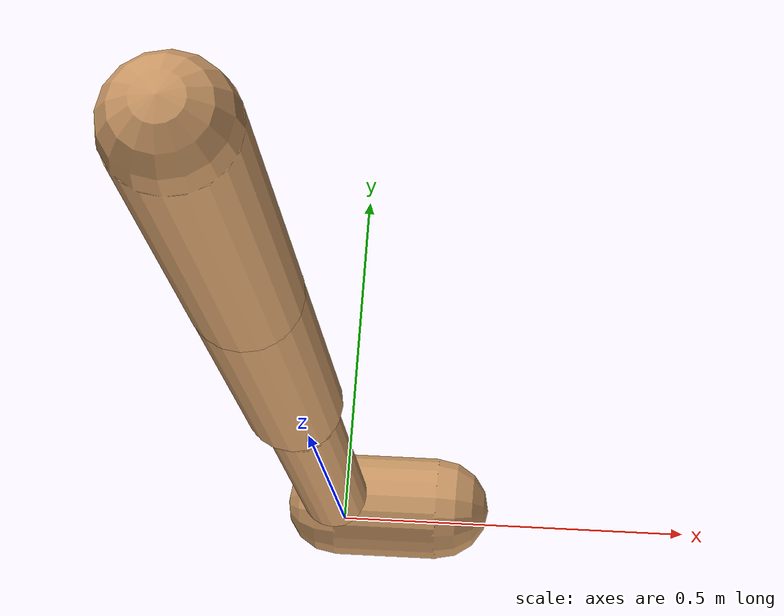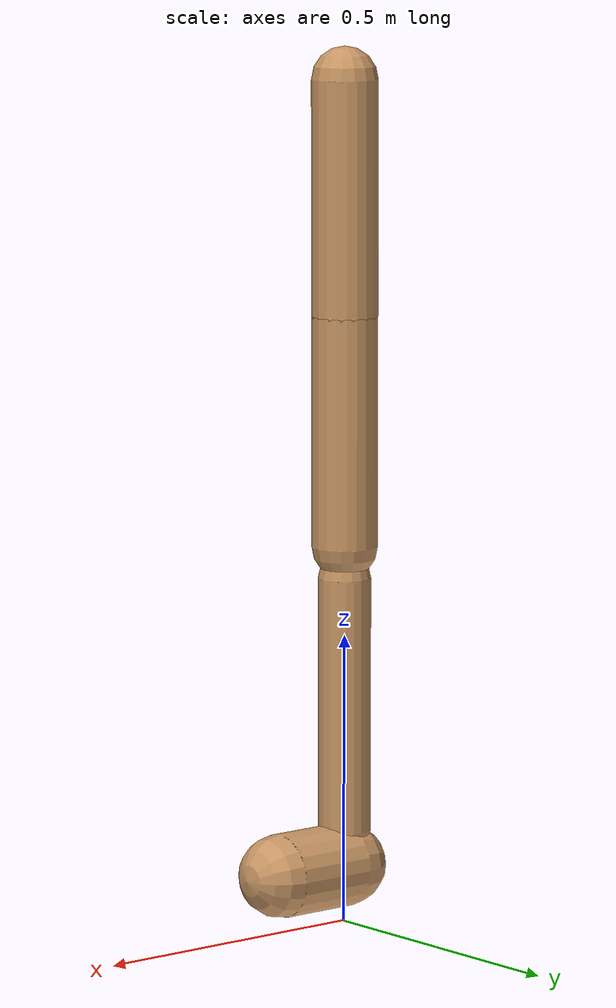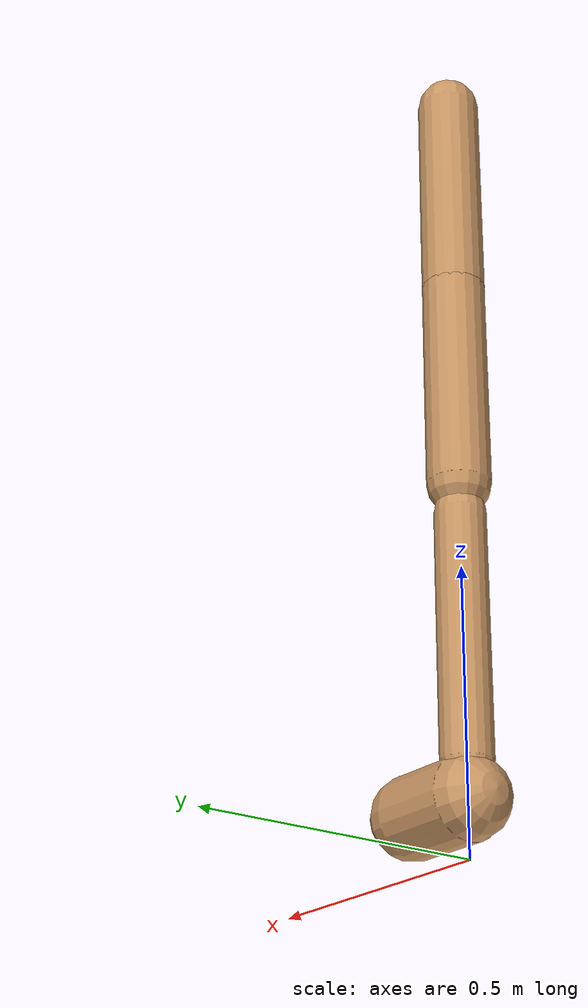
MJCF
<mujoco model="walker2d">
  <compiler angle="degree" coordinate="global" inertiafromgeom="true" />
  <default>
    <joint armature="0.01" damping=".1" limited="true" />
    <geom conaffinity="0" condim="3" contype="1" density="1000" friction="0.8 .1 .1" rgba="0.8 0.6 .4 1" />
  </default>
  <option integrator="RK4" timestep="0.002" />
  <worldbody>

    <body name="torso" pos="0 0 -0.1147999980351276">
      <joint armature="0" axis="1 0 0" damping="0" limited="false" name="ignorex" pos="0 0 0" stiffness="0" type="slide" />
      <joint armature="0" axis="0 0 1" damping="0" limited="false" name="ignorez" pos="0 0 0" ref="1.25" stiffness="0" type="slide" />
      <joint armature="0" axis="0 1 0" damping="0" limited="false" name="ignorey" pos="0 0 0" stiffness="0" type="hinge" />
      <geom fromto="0 0 1.45 0 0 1.05" name="torso_geom" size="0.05684998940895855" type="capsule" />
      <body name="thigh">
        <joint axis="0 -1 0" name="thigh_joint" pos="0 0 1.05" range="-150 0" type="hinge" />
        <geom fromto="0.0 0.0 1.05 0.0 0.0 0.654378946437692" name="thigh_geom" size="0.05656277091065179" type="capsule" />
        <body name="leg" pos="0.0 0.0 0.05437894643769203">
          <joint axis="0 -1 0" name="leg_joint" pos="0 0 0.6" range="-150 0" type="hinge" />
          <geom fromto="0.0 0.0 0.6 0.0 0.0 0.16042105159743558" name="leg_geom" size="0.04525021672852143" type="capsule" />
          <body name="foot" pos="0.0 0.0 0.06042105159743558">
            <joint axis="0 -1 0" name="foot_joint" pos="0 0 0.1" range="-45 45" type="hinge" />
            <geom fromto="0.0 0.0 0.1 0.14220761535552923 0.0 0.1" name="foot_geom" size="0.07180624864272049" type="capsule" />
          </body>
        </body>
      </body>

      <body name="thigh_left">
        <joint axis="0 -1 0" name="thigh_left_joint" pos="0 0 1.05" range="-150 0" type="hinge" />
        <geom fromto="0.0 0.0 1.05 0.0 0.0 0.654378946437692" name="thigh_left_geom" rgba=".7 .3 .6 1" size="0.05656277091065179" type="capsule" />
        <body name="leg_left" pos="0.0 0.0 0.05437894643769203">
          <joint axis="0 -1 0" name="leg_left_joint" pos="0 0 0.6" range="-150 0" type="hinge" />
          <geom fromto="0.0 0.0 0.6 0.0 0.0 0.16042105159743558" name="leg_left_geom" rgba=".7 .3 .6 1" size="0.04525021672852143" type="capsule" />
          <body name="foot_left" pos="0.0 0.0 0.06042105159743558">
            <joint axis="0 -1 0" name="foot_left_joint" pos="0 0 0.1" range="-45 45" type="hinge" />
            <geom fromto="0.0 0.0 0.1 0.14220761535552923 0.0 0.1" name="foot_left_geom" rgba=".7 .3 .6 1" size="0.07180624864272049" type="capsule" />
          </body>
        </body>
      </body>
    </body>
  </worldbody>
  <actuator>

    <motor ctrllimited="true" ctrlrange="-1.0 1.0" gear="100" joint="thigh_joint" />
    <motor ctrllimited="true" ctrlrange="-1.0 1.0" gear="100" joint="leg_joint" />
    <motor ctrllimited="true" ctrlrange="-1.0 1.0" gear="100" joint="foot_joint" />
    <motor ctrllimited="true" ctrlrange="-1.0 1.0" gear="100" joint="thigh_left_joint" />
    <motor ctrllimited="true" ctrlrange="-1.0 1.0" gear="100" joint="leg_left_joint" />
    <motor ctrllimited="true" ctrlrange="-1.0 1.0" gear="100" joint="foot_left_joint" />

  </actuator>
</mujoco>
